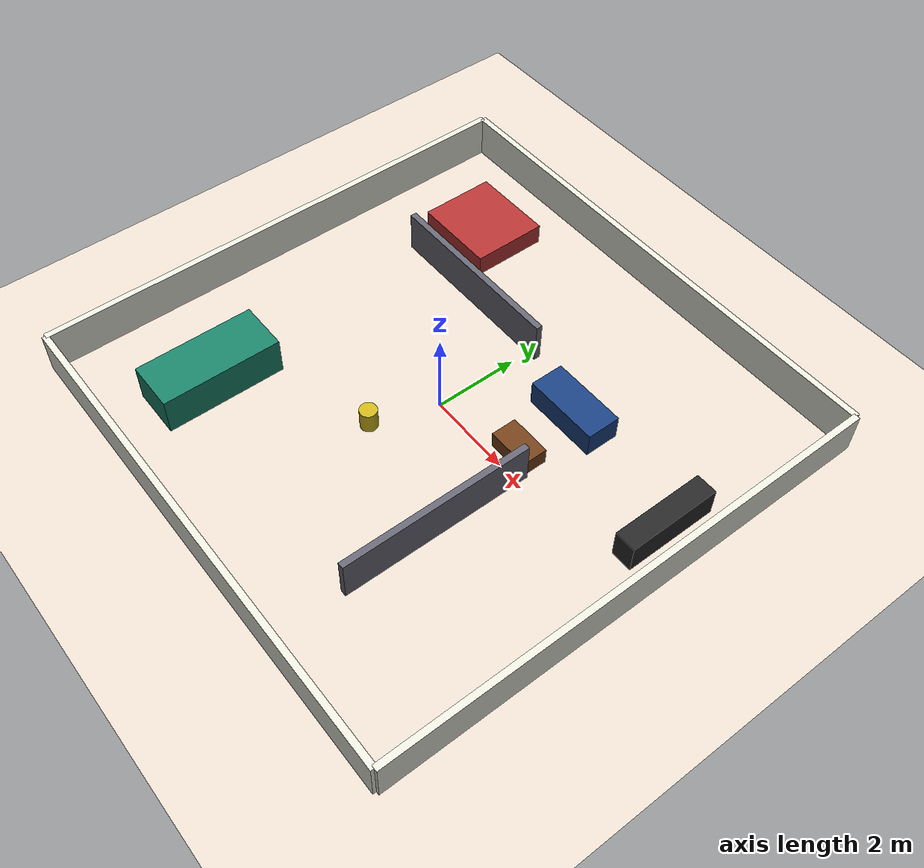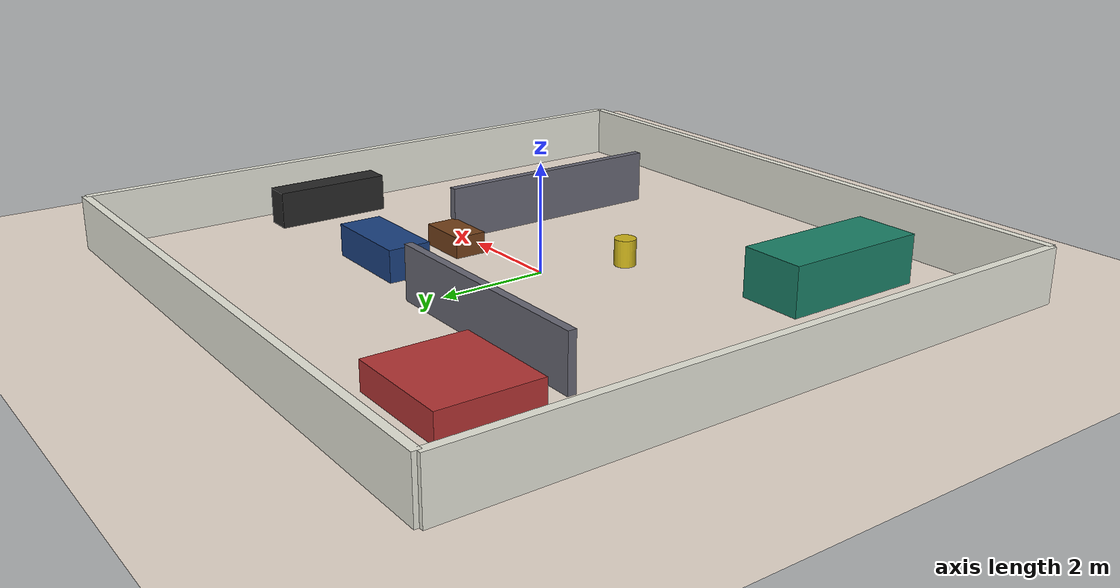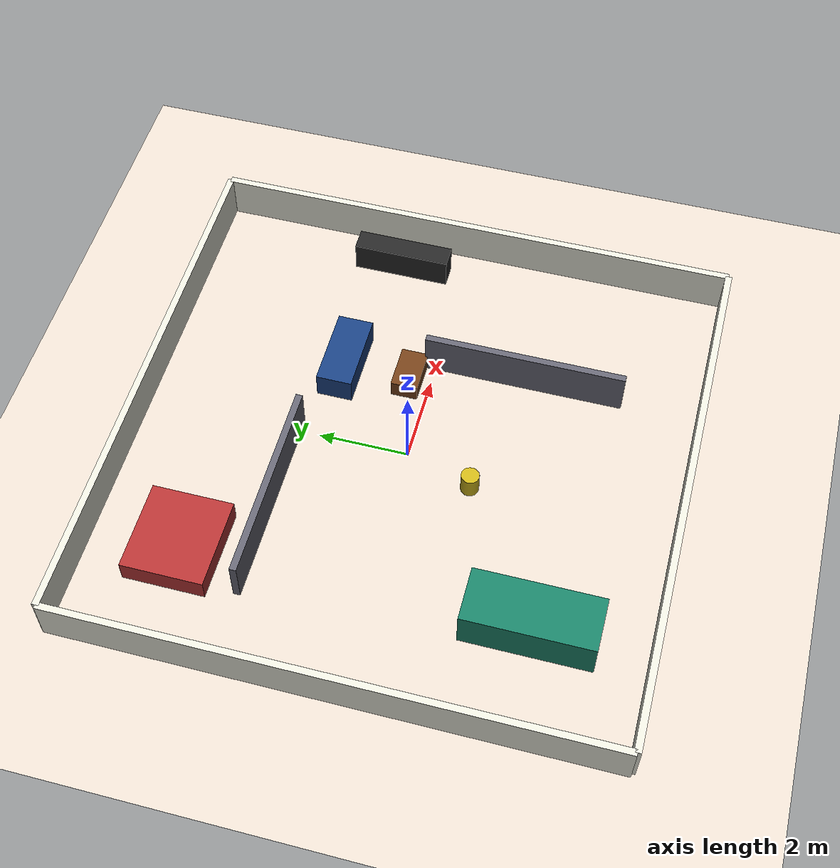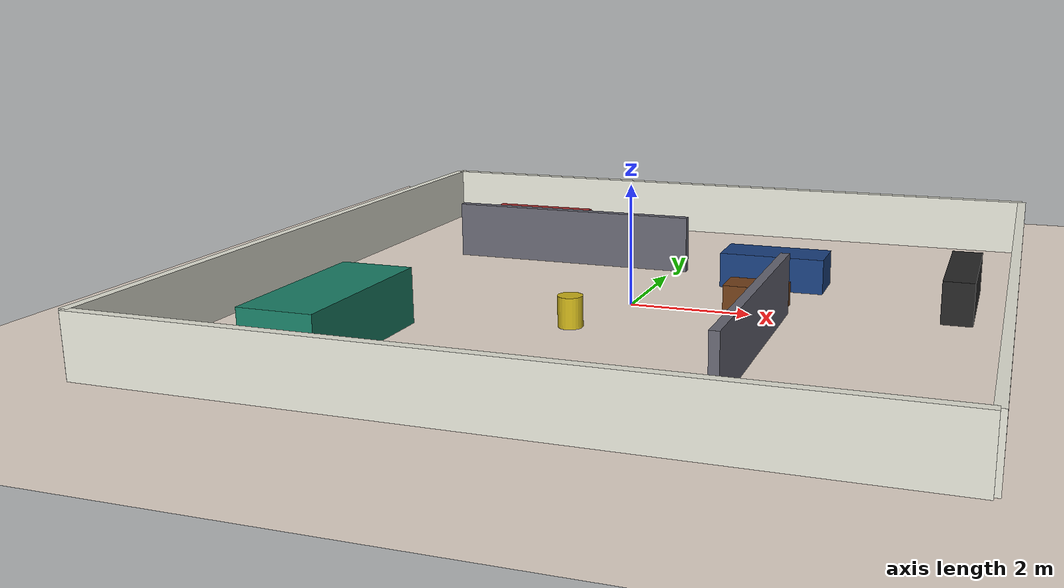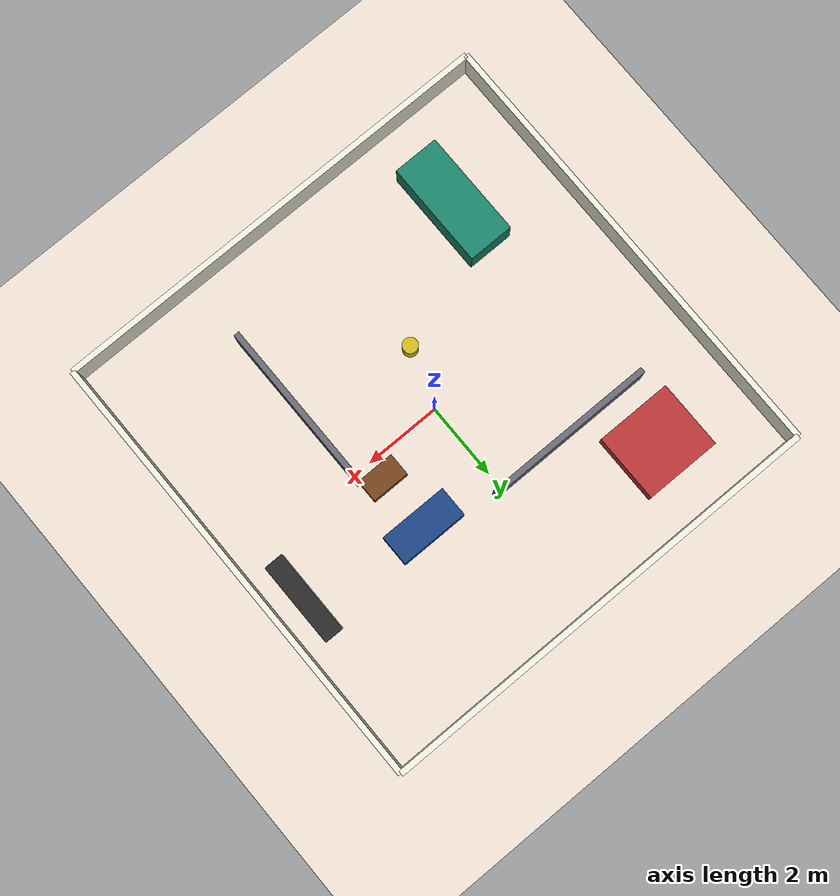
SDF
<?xml version="1.0" ?>
<sdf version="1.8">
  <world name="default">
    <!-- SYSTEM PLUGINS -->
    <plugin filename="gz-sim-physics-system" name="gz::sim::systems::Physics"/>
    <plugin filename="gz-sim-user-commands-system" name="gz::sim::systems::UserCommands"/>
    <plugin filename="gz-sim-scene-broadcaster-system" name="gz::sim::systems::SceneBroadcaster"/>
    <plugin filename="gz-sim-sensors-system" name="gz::sim::systems::Sensors">
      <render_engine>ogre2</render_engine>
    </plugin>

    <!-- LIGHTING -->
    <light type="directional" name="sun">
      <cast_shadows>true</cast_shadows>
      <pose>0 0 12 0 0 0</pose>
      <diffuse>0.95 0.95 0.95 1</diffuse>
      <specular>0.3 0.3 0.3 1</specular>
      <direction>-0.5 0.1 -0.9</direction>
    </light>

    <!-- GROUND PLANE (Light Warm Tile Texture Finish) -->
    <model name="ground_plane">
      <static>true</static>
      <link name="link">
        <collision name="collision">
          <geometry><plane><normal>0 0 1</normal></plane></geometry>
        </collision>
        <visual name="visual">
          <geometry><plane><normal>0 0 1</normal><size>16 16</size></plane></geometry>
          <material>
            <ambient>0.9 0.85 0.8 1</ambient>
            <diffuse>0.9 0.85 0.8 1</diffuse>
          </material>
        </visual>
      </link>
    </model>

    <!-- OUTER HOUSE BOUNDARY WALLS (Cream White Finish) -->
    <model name="wall_north">
      <static>true</static>
      <pose>0 6.0 0.5 0 0 0</pose>
      <link name="l"><collision name="c"><geometry><box><size>12.0 0.15 1.0</size></box></geometry></collision>
      <visual name="v"><geometry><box><size>12.0 0.15 1.0</size></box></geometry><material><ambient>0.9 0.9 0.85 1</ambient><diffuse>0.9 0.9 0.85 1</diffuse></material></visual></link>
    </model>

    <model name="wall_south">
      <static>true</static>
      <pose>0 -6.0 0.5 0 0 0</pose>
      <link name="l"><collision name="c"><geometry><box><size>12.0 0.15 1.0</size></box></geometry></collision>
      <visual name="v"><geometry><box><size>12.0 0.15 1.0</size></box></geometry><material><ambient>0.9 0.9 0.85 1</ambient><diffuse>0.9 0.9 0.85 1</diffuse></material></visual></link>
    </model>

    <model name="wall_east">
      <static>true</static>
      <pose>6.0 0 0.5 0 0 0</pose>
      <link name="l"><collision name="c"><geometry><box><size>0.15 12.0 1.0</size></box></geometry></collision>
      <visual name="v"><geometry><box><size>0.15 12.0 1.0</size></box></geometry><material><ambient>0.9 0.9 0.85 1</ambient><diffuse>0.9 0.9 0.85 1</diffuse></material></visual></link>
    </model>

    <model name="wall_west">
      <static>true</static>
      <pose>-6.0 0 0.5 0 0 0</pose>
      <link name="l"><collision name="c"><geometry><box><size>0.15 12.0 1.0</size></box></geometry></collision>
      <visual name="v"><geometry><box><size>0.15 12.0 1.0</size></box></geometry><material><ambient>0.9 0.9 0.85 1</ambient><diffuse>0.9 0.9 0.85 1</diffuse></material></visual></link>
    </model>

    <!-- ROOM DIVIDERS & CORRIDOR DOORS -->
    <!-- Bedroom Partition with Doorway Pass -->
    <model name="bedroom_wall">
      <static>true</static>
      <pose>-2.0 2.5 0.5 0 0 0</pose>
      <link name="l"><collision name="c"><geometry><box><size>4.5 0.15 1.0</size></box></geometry></collision>
      <visual name="v"><geometry><box><size>4.5 0.15 1.0</size></box></geometry><material><ambient>0.4 0.4 0.45 1</ambient><diffuse>0.4 0.4 0.45 1</diffuse></material></visual></link>
    </model>

    <!-- Kitchen Divider Wall -->
    <model name="kitchen_wall">
      <static>true</static>
      <pose>2.5 -2.0 0.5 0 0 0</pose>
      <link name="l"><collision name="c"><geometry><box><size>0.15 4.5 1.0</size></box></geometry></collision>
      <visual name="v"><geometry><box><size>0.15 4.5 1.0</size></box></geometry><material><ambient>0.4 0.4 0.45 1</ambient><diffuse>0.4 0.4 0.45 1</diffuse></material></visual></link>
    </model>

    <!-- LIVING ROOM FURNITURE -->
    <!-- Modern TV Unit & Console -->
    <model name="tv_unit">
      <static>true</static>
      <pose>5.2 1.5 0.35 0 0 0</pose>
      <link name="l"><collision name="c"><geometry><box><size>0.5 2.2 0.7</size></box></geometry></collision>
      <visual name="v"><geometry><box><size>0.5 2.2 0.7</size></box></geometry><material><ambient>0.15 0.15 0.15 1</ambient><diffuse>0.15 0.15 0.15 1</diffuse></material></visual></link>
    </model>

    <!-- Living Room Sofa (Dark Blue Cushion) -->
    <model name="living_sofa">
      <static>true</static>
      <pose>2.0 2.0 0.3 0 0 0</pose>
      <link name="l"><collision name="c"><geometry><box><size>1.8 0.8 0.6</size></box></geometry></collision>
      <visual name="v"><geometry><box><size>1.8 0.8 0.6</size></box></geometry><material><ambient>0.1 0.25 0.5 1</ambient><diffuse>0.1 0.25 0.5 1</diffuse></material></visual></link>
    </model>

    <!-- Coffee Table (Teak Finish) -->
    <model name="coffee_table">
      <static>true</static>
      <pose>2.0 0.5 0.2 0 0 0</pose>
      <link name="l"><collision name="c"><geometry><box><size>1.0 0.6 0.4</size></box></geometry></collision>
      <visual name="v"><geometry><box><size>1.0 0.6 0.4</size></box></geometry><material><ambient>0.45 0.25 0.1 1</ambient><diffuse>0.45 0.25 0.1 1</diffuse></material></visual></link>
    </model>

    <!-- BEDROOM SETUP -->
    <!-- King Size Bed Structure -->
    <model name="bed">
      <static>true</static>
      <pose>-3.5 4.0 0.3 0 0 0</pose>
      <link name="l"><collision name="c"><geometry><box><size>2.0 1.8 0.5</size></box></geometry></collision>
      <visual name="v"><geometry><box><size>2.0 1.8 0.5</size></box></geometry><material><ambient>0.7 0.2 0.2 1</ambient><diffuse>0.7 0.2 0.2 1</diffuse></material></visual></link>
    </model>

    <!-- KITCHEN ISLAND / COUNTER -->
    <model name="kitchen_counter">
      <static>true</static>
      <pose>-3.5 -3.5 0.45 0 0 0</pose>
      <link name="l"><collision name="c"><geometry><box><size>1.2 2.8 0.9</size></box></geometry></collision>
      <visual name="v"><geometry><box><size>1.2 2.8 0.9</size></box></geometry><material><ambient>0.1 0.5 0.4 1</ambient><diffuse>0.1 0.5 0.4 1</diffuse></material></visual></link>
    </model>

    <!-- SMALL OBSTACLES (Dustbin & Stool) -->
    <model name="dustbin">
      <static>true</static>
      <pose>-0.5 -1.5 0.25 0 0 0</pose>
      <link name="l"><collision name="c"><geometry><cylinder><radius>0.2</radius><length>0.5</length></cylinder></geometry></collision>
      <visual name="v"><geometry><cylinder><radius>0.2</radius><length>0.5</length></cylinder></geometry><material><ambient>0.8 0.7 0.1 1</ambient><diffuse>0.8 0.7 0.1 1</diffuse></material></visual></link>
    </model>

  </world>
</sdf>
